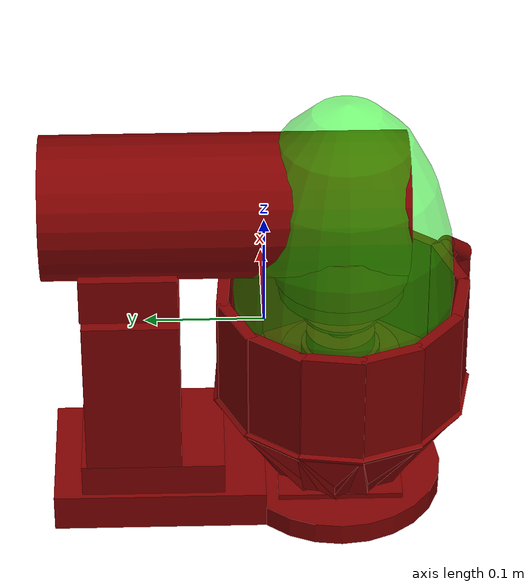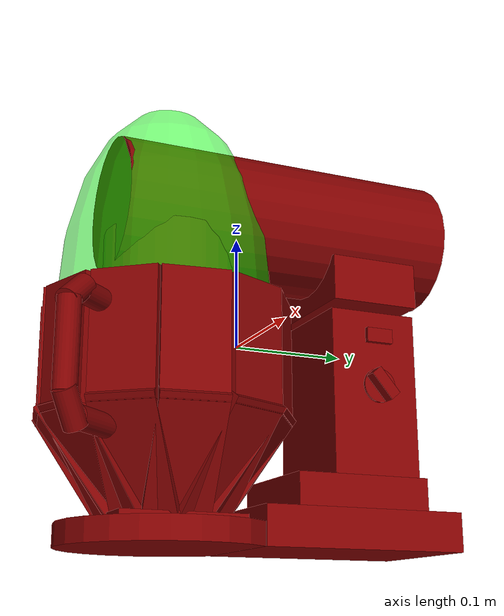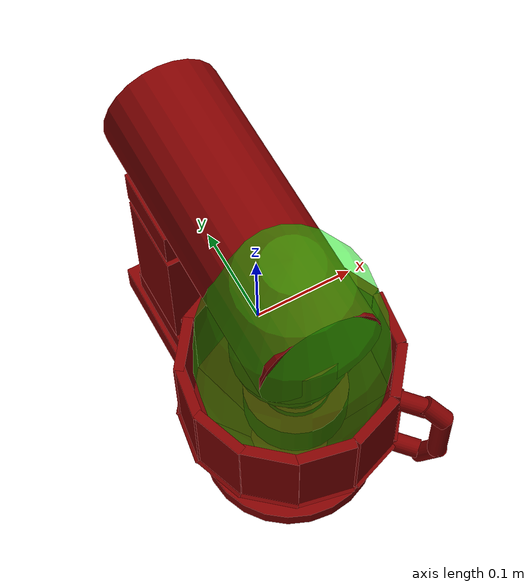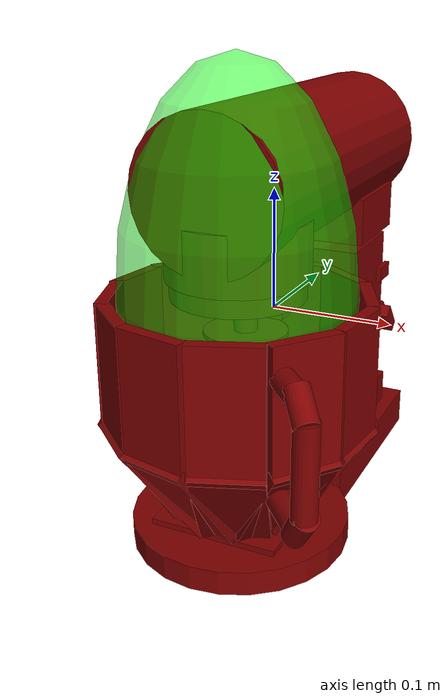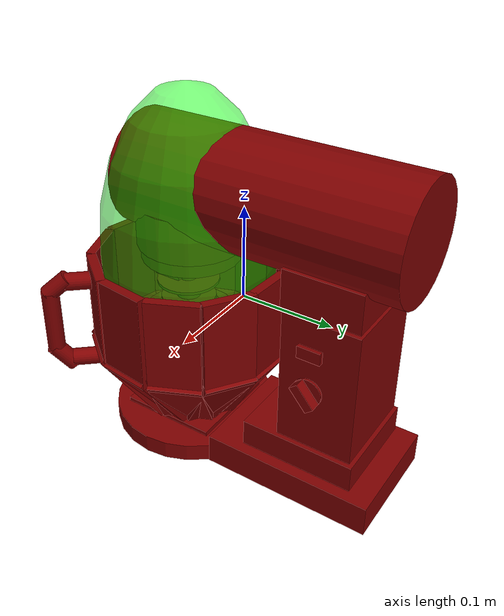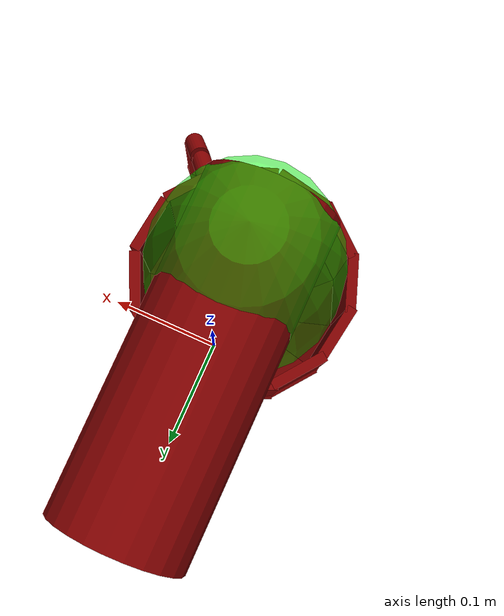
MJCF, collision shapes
<?xml version='1.0' encoding='UTF-8'?>
<mujoco model="model">
  <option timestep="0.002" gravity="0.0 0.0 -9.81"/>
  <compiler angle="radian"/>
  <asset>
    <mesh file="visuals/blender.obj" name="blender_vis"/>
    <mesh file="visuals/bowl.obj" name="bowl_vis"/>
    <mesh file="visuals/button_head_lock.obj" name="button_head_lock_vis"/>
    <mesh file="visuals/head.obj" name="head_vis"/>
    <mesh file="visuals/knob_speed.obj" name="knob_speed_vis"/>
    <mesh file="visuals/Body001.obj" name="Body001_vis"/>
    <texture file="visuals/T_BC001.png" name="Body001_material" type="2d"/>
    <material name="Body001_material" rgba="1 1 1 1.0" texture="Body001_material" shininess="0.5" specular="0.3103448502657381"/>
    <texture file="visuals/T_BC001.png" name="bowl_material" type="2d"/>
    <material name="bowl_material" rgba="1 1 1 1.0" texture="bowl_material" shininess="1" specular="1"/>
    <texture file="visuals/T_BC001.png" name="button_head_lock_material" type="2d"/>
    <material name="button_head_lock_material" rgba="1 1 1 1.0" texture="button_head_lock_material" shininess="0.5" specular="0.3103448502657381"/>
    <texture file="visuals/T_BC001.png" name="head_material" type="2d"/>
    <material name="head_material" rgba="1 1 1 1.0" texture="head_material" shininess="0.5" specular="0.3103448502657381"/>
    <texture file="visuals/T_BC001.png" name="blender_material" type="2d"/>
    <material name="blender_material" rgba="1 1 1 1.0" texture="blender_material" shininess="1" specular="1"/>
    <texture file="visuals/T_BC001.png" name="knob_speed_material" type="2d"/>
    <material name="knob_speed_material" rgba="1 1 1 1.0" texture="knob_speed_material" shininess="0.5" specular="0.3103448502657381"/>
  </asset>
  <default>
    <default class="visual">
      <geom conaffinity="0" contype="0" group="1" type="mesh"/>
    </default>
    <default class="collision">
      <geom group="0" rgba="0.5 0 0 0.5"/>
    </default>
    <default class="spawn">
      <geom group="0" rgba="1 1 1 0.5" contype="0" conaffinity="0"/>
      <site group="0" rgba="1 1 1 0.5"/>
    </default>
    <default class="region">
      <geom group="1" conaffinity="0" contype="0" rgba="0 1 0 0"/>
    </default>
  </default>
  <worldbody>
    <body>
      <body name="object">
        <geom mesh="Body001_vis" type="mesh" solimp="0.998 0.998 0.001" solref="0.001 1" friction="0.95 0.3 0.1" class="visual" material="Body001_material"/>
        <geom type="cylinder" pos="-0.00022848104708828032 -0.064354307949543 -0.16482660174369812" size="0.08874775469303131 0.009711392223834991" quat="0.7071068286895752 0.0 0.0 0.7071067094802856" class="collision"/>
        <geom type="box" pos="-0.005762792192399502 0.11128920316696167 -0.039861973375082016" size="0.04039444401860237 0.05158252269029617 0.07252521067857742" quat="0.7071068286895752 0.0 0.0 0.7071067094802856" class="collision"/>
        <geom type="box" pos="0.0004865553055424243 0.08999951183795929 -0.15792568027973175" size="0.09048203378915787 0.06246824935078621 0.016619961708784103" quat="0.7071068286895752 0.0 0.0 0.7071067094802856" class="collision"/>
        <geom type="box" pos="-0.0033176415599882603 0.09539289772510529 -0.12879902124404907" size="0.060838695615530014 0.05402767285704613 0.016619961708784103" quat="0.7071068286895752 0.0 0.0 0.7071067094802856" class="collision"/>
        <body name="bowl">
          <geom mesh="bowl_vis" type="mesh" solimp="0.998 0.998 0.001" solref="0.001 1" friction="0.95 0.3 0.1" class="visual" material="bowl_material"/>
          <geom type="cylinder" pos="0.07480400055646896 -0.14703887701034546 -0.08960401266813278" size="0.009424982592463493 0.02030491828918457" quat="0.49441301822662354 -0.7058183550834656 0.04193372651934624 0.505586564540863" class="collision"/>
          <geom type="cylinder" pos="0.09387672692537308 -0.16765083372592926 0.0016370464581996202" size="0.009424983523786068 0.014377474784851074" quat="0.634695827960968 -0.42688503861427307 0.03379013016819954 0.6432639956474304" class="collision"/>
          <geom type="cylinder" pos="0.0790802389383316 -0.15174829959869385 0.005853107664734125" size="0.009424982592463493 0.014377474784851074" quat="0.49441301822662354 -0.7058183550834656 0.04193372651934624 0.505586564540863" class="collision"/>
          <geom type="cylinder" pos="0.09452018141746521 -0.16874229907989502 -0.084271639585495" size="0.009424982592463493 0.01623125746846199" quat="0.20755493640899658 -0.943259596824646 0.06560474634170532 0.2507554888725281" class="collision"/>
          <geom type="cylinder" pos="0.09957893192768097 -0.17388378083705902 -0.03928923234343529" size="0.009424983523786068 0.035405486822128296" quat="0.7220362424850464 -0.0005324371159076691 0.0035060904920101166 0.6918461322784424" class="collision"/>
          <geom type="box" pos="0.09834914654493332 -0.07533300668001175 -0.021147072315216064" size="0.02756338007748127 0.004887496121227741 0.05233755335211754" quat="0.7472476959228516 0.0 0.0 0.6645455956459045" class="collision"/>
          <geom type="box" pos="0.07227533310651779 -0.07226771861314774 -0.10825107246637344" size="0.02756338380277157 0.004887495655566454 0.05233755335211754" quat="0.7119936943054199 0.22681300342082977 0.20171034336090088 0.63319331407547" class="collision"/>
          <geom type="box" pos="0.06488372385501862 -0.03282260149717331 -0.10825107246637344" size="0.02756338380277157 0.004887495655566454 0.05233755335211754" quat="0.5105448365211487 0.16263940930366516 0.25628039240837097 0.8044953346252441" class="collision"/>
          <geom type="box" pos="0.08863841742277145 -0.021644307300448418 -0.021147072315216064" size="0.02756337821483612 0.004887495655566454 0.05233755335211754" quat="0.5358242392539978 0.0 0.0 0.8443295359611511" class="collision"/>
          <geom type="box" pos="0.05301034078001976 0.018176143988966942 -0.021147072315216064" size="0.02756338007748127 0.004887496121227741 0.05233755335211754" quat="0.28878554701805115 0.0 0.0 0.9573938250541687" class="collision"/>
          <geom type="box" pos="0.03849320113658905 -0.0036983219906687737 -0.10825107246637344" size="0.02756338380277157 0.004887495655566454 0.05233755335211754" quat="0.27516108751296997 0.0876554399728775 0.29059889912605286 0.9122254252433777" class="collision"/>
          <geom type="box" pos="0.002621553372591734 0.007470749318599701 -0.10825107246637344" size="0.02756338380277157 0.004887496121227741 0.05233755707740784" quat="0.031179768964648247 0.009932637214660645 0.30336880683898926 0.9523111581802368" class="collision"/>
          <geom type="box" pos="0.004338837694376707 0.0336679108440876 -0.021147072315216064" size="0.02756338007748127 0.004887496121227741 0.05233755335211754" quat="0.032723501324653625 0.0 0.0 0.9994644522666931" class="collision"/>
          <geom type="box" pos="-0.044060323387384415 0.023671478033065796 -0.021147072315216064" size="0.02756337821483612 0.004887495655566454 0.05233755335211754" quat="0.21712905168533325 0.0 -0.0 -0.9761428833007812" class="collision"/>
          <geom type="box" pos="-0.03293156996369362 -0.00010646630835253745 -0.10825107246637344" size="0.02756338194012642 0.004887496121227741 0.05233755335211754" quat="0.20688532292842865 0.06590550392866135 -0.29628995060920715 -0.9300898909568787" class="collision"/>
          <geom type="box" pos="-0.05990442633628845 -0.023149989545345306 -0.10825107246637344" size="0.027563385665416718 0.004887495655566454 0.05233755335211754" quat="0.42665916681289673 0.13591666519641876 -0.2713998258113861 -0.8519570231437683" class="collision"/>
          <geom type="box" pos="-0.08092723786830902 -0.00742481229826808 -0.021147072315216064" size="0.02756337821483612 0.004887495655566454 0.05233755335211754" quat="0.4477851688861847 0.0 -0.0 -0.8941411972045898" class="collision"/>
          <geom type="box" pos="-0.0988556370139122 -0.05276840925216675 -0.021147072315216064" size="0.02756338007748127 0.004887496121227741 0.05233755335211754" quat="0.6536893844604492 0.0 -0.0 -0.7567629814147949" class="collision"/>
          <geom type="box" pos="-0.07288117706775665 -0.05658512935042381 -0.10825107246637344" size="0.02756338380277157 0.004887495655566454 0.05233755335211754" quat="0.6228494644165039 0.19841518998146057 -0.22970114648342133 -0.7210598587989807" class="collision"/>
          <geom type="box" pos="-0.06846462190151215 -0.09192422032356262 -0.10825107246637344" size="0.02756338194012642 0.004887496121227741 0.05233755335211754" quat="0.7799082398414612 0.2484479695558548 -0.17436984181404114 -0.5473681092262268" class="collision"/>
          <geom type="box" pos="-0.09315428137779236 -0.10084950178861618 -0.021147072315216064" size="0.02756337821483612 0.004887495655566454 0.05233755335211754" quat="0.8185250759124756 0.0 0.0 -0.5744708180427551" class="collision"/>
          <geom type="box" pos="-0.0638885647058487 -0.1417829990386963 -0.021147072315216064" size="0.02756338007748127 0.004887496121227741 0.05233755335211754" quat="0.9374102354049683 0.0 0.0 -0.34822702407836914" class="collision"/>
          <geom type="box" pos="-0.046748705208301544 -0.12189668416976929 -0.10825107246637344" size="0.02756338380277157 0.004887496121227741 0.05233755335211754" quat="0.8931846618652344 0.2845332622528076 -0.10569778829813004 -0.33179810643196106" class="collision"/>
          <geom type="box" pos="-0.013200786896049976 -0.13735437393188477 -0.10825107246637344" size="0.027563385665416718 0.004887496121227741 0.05233755335211754" quat="0.9480680227279663 0.3020169138908386 -0.03028135560452938 -0.09505688399076462" class="collision"/>
          <geom type="box" pos="-0.018412910401821136 -0.16308516263961792 -0.021147072315216064" size="0.02756338007748127 0.004887496121227741 0.05233755335211754" quat="0.9950111508369446 0.0 0.0 -0.09976369142532349" class="collision"/>
          <geom type="box" pos="0.03538268432021141 -0.15804971754550934 -0.021147072315216064" size="0.02756338007748127 0.004887496121227741 0.05233755335211754" quat="0.9845998287200928 0.0 0.0 0.1748233586549759" class="collision"/>
          <geom type="box" pos="0.026344632729887962 -0.13340112566947937 -0.10825107246637344" size="0.02756338380277157 0.004887495655566454 0.05233755335211754" quat="0.9381478428840637 0.29885679483413696 0.053064361214637756 0.16657553613185883" class="collision"/>
          <geom type="box" pos="0.05820024013519287 -0.10899805277585983 -0.10825107246637344" size="0.027563385665416718 0.004887496121227741 0.05233755335211754" quat="0.8562463521957397 0.27276623249053955 0.1331533044576645 0.41798433661460876" class="collision"/>
          <geom type="box" pos="0.0788993239402771 -0.12514697015285492 -0.021147072315216064" size="0.02756338007748127 0.004887496121227741 0.05233755335211754" quat="0.8986430168151855 0.0 0.0 0.4386807084083557" class="collision"/>
          <geom type="box" pos="-0.00022848104708828032 -0.064354307949543 -0.15162776410579681" size="0.05313762649893761 0.05313762649893761 0.002367164473980665" quat="0.7071068286895752 0.0 0.0 0.7071067094802856" class="collision"/>
          <geom name="reg_bowl" type="ellipsoid" pos="-1.862645149230957e-08 -0.06670361012220383 0.031287163496017456" size="0.09102249145507812 0.09275700896978378 0.17931221425533295" rgba="0 1 0 0.5" class="region"/>
        </body>
        <body name="button_head_lock">
          <joint axis="-1.0 0.0 0.0" pos="0.05825059860944748 0.10862969607114792 0.007413100451231003" limited="true" name="button_head_lock_joint" range="0.0 0.0015" type="slide" damping="1" frictionloss="1" armature=".01" stiffness="0.05"/>
          <geom mesh="button_head_lock_vis" type="mesh" solimp="0.998 0.998 0.001" solref="0.001 1" friction="0.95 0.3 0.1" class="visual" material="button_head_lock_material"/>
          <geom class="collision" type="box" pos="0.059242475777864456 0.10862969607114792 0.007413100451231003" size="0.012191162444651127 0.0020922389812767506 0.006317922379821539" quat="0.7071068286895752 0.0 0.0 0.7071067094802856" name="button_head_lock_main"/>
        </body>
        <body name="head">
          <joint axis="-1.0 0.0 0.0" pos="-0.0003941244212910533 0.14914104342460632 0.034669242799282074" limited="true" name="head_joint" range="0.0 1.5707963267948966" type="hinge" damping="1" frictionloss="1" armature=".01" stiffness="0.05"/>
          <geom mesh="head_vis" type="mesh" solimp="0.998 0.998 0.001" solref="0.001 1" friction="0.95 0.3 0.1" class="visual" material="head_material"/>
          <geom type="box" pos="0.005692340899258852 -0.06435514241456985 0.02657683752477169" size="0.01429824996739626 0.03572718799114227 0.004843821283429861" quat="0.7071068286895752 0.0 0.0 0.7071067094802856" class="collision"/>
          <geom type="cylinder" pos="-0.0007112391758710146 -0.06440814584493637 0.03916678950190544" size="0.05252593010663986 0.008868275210261345" quat="5.338507591545749e-08 0.7071067690849304 -0.7071068286895752 5.338507591545749e-08" class="collision"/>
          <geom type="cylinder" pos="-0.0007112318417057395 0.03275151923298836 0.11570223420858383" size="0.05984557047486305 0.15002548694610596" quat="0.5000000596046448 0.5 -0.5 0.4999999701976776" class="collision"/>
          <geom type="cylinder" pos="-0.0007112391758710146 -0.06440814584493637 0.06875722110271454" size="0.05610077828168869 0.02321208082139492" quat="5.338507591545749e-08 0.7071067690849304 -0.7071068286895752 5.338507591545749e-08" class="collision"/>
          <geom type="box" pos="-0.003317640395835042 0.11208942532539368 0.06002816930413246" size="0.04045430198311806 0.05402767285704613 0.02022590860724449" quat="0.7071068286895752 0.0 0.0 0.7071067094802856" class="collision"/>
          <body name="blender">
            <joint axis="0.0 0.0 1.0" pos="0.005285596940666437 -0.06437551975250244 -0.06018798053264618" limited="false" name="blender_joint" range="0 360" type="hinge" damping="1" frictionloss="1" armature=".01" stiffness="0.05"/>
            <geom mesh="blender_vis" type="mesh" solimp="0.998 0.998 0.001" solref="0.001 1" friction="0.95 0.3 0.1" class="visual" material="blender_material"/>
            <geom type="cylinder" pos="0.005463118199259043 -0.06512968242168427 0.011573953554034233" size="0.009037850424647331 0.007443954236805439" quat="5.338507591545749e-08 0.7071067690849304 -0.7071068286895752 5.338507591545749e-08" class="collision"/>
            <geom type="cylinder" pos="0.005463118199259043 -0.06512968242168427 -0.0240495465695858" size="0.029054420068860054 0.007450357545167208" quat="5.338507236274381e-08 0.7071067690849304 -0.7071068286895752 5.338508302088485e-08" class="collision"/>
            <geom type="cylinder" pos="0.005463118199259043 -0.06512968987226486 -0.007977092638611794" size="0.01264073047786951 0.009584451094269753" quat="5.338507591545749e-08 0.7071067690849304 -0.7071068286895752 5.338507591545749e-08" class="collision"/>
            <geom type="cylinder" pos="0.005463118199259043 -0.06512968242168427 0.0026307376101613045" size="0.0328192412853241 0.0014842669479548931" quat="5.338507591545749e-08 0.7071067690849304 -0.7071068286895752 5.338507591545749e-08" class="collision"/>
            <geom type="cylinder" pos="0.005463118199259043 -0.06512968987226486 -0.05898091197013855" size="0.0509517565369606 0.02066851034760475" quat="5.338507591545749e-08 0.7071067690849304 -0.7071068286895752 5.338507591545749e-08" class="collision"/>
            <geom type="cylinder" pos="0.005463118199259043 -0.06512968987226486 -0.08023826032876968" size="0.03422026336193085 0.017157116904854774" quat="5.338507591545749e-08 0.7071067690849304 -0.7071068286895752 5.338507591545749e-08" class="collision"/>
            <geom type="cylinder" pos="0.005463118199259043 -0.06512968242168427 -0.034959301352500916" size="0.03334075212478638 0.004949826747179031" quat="5.338507236274381e-08 0.7071067690849304 -0.7071068286895752 5.338508302088485e-08" class="collision"/>
          </body>
        </body>
        <body name="knob_speed">
          <joint axis="-1.0 0.0 0.0" pos="0.06188736855983734 0.10826413333415985 -0.0363365076482296" limited="true" name="knob_speed_joint" range="0.0 4.625122517784973" type="hinge" damping="0.05" armature="0.001"/>
          <geom mesh="knob_speed_vis" type="mesh" solimp="0.998 0.998 0.001" solref="0.001 1" friction="0.95 0.3 0.1" class="visual" material="knob_speed_material"/>
          <geom type="cylinder" pos="0.057881858199834824 0.10826413333415985 -0.0363365076482296" size="0.01483010035008192 0.0011637858115136623" quat="0.5000000596046448 0.5 0.4999999701976776 0.5" class="collision"/>
          <geom class="collision" type="box" pos="0.06436283886432648 0.10826413333415985 -0.0363365076482296" size="0.013882497325539589 0.0054029677994549274 0.005205981899052858" quat="0.6408564448356628 -0.29883626103401184 0.29883620142936707 0.6408563256263733" name="knob_speed_main"/>
        </body>
        <geom class="region" name="reg_main" type="box" pos="-0.00019919394981116056 0.014967231079936028 0.0" size="0.08877549862861633 0.16828034615516663 0.17591218447685242"/>
      </body>
    </body>
  </worldbody>
  <actuator>
    <motor name="button_head_lock_joint_actuator" joint="button_head_lock_joint" gear="0.1"/>
    <motor name="head_joint_actuator" joint="head_joint" gear="10"/>
    <motor name="knob_speed_joint_actuator" joint="knob_speed_joint" gear="10"/>
    <motor name="blender_joint_actuator" joint="blender_joint" gear="10"/>
  </actuator>
</mujoco>
